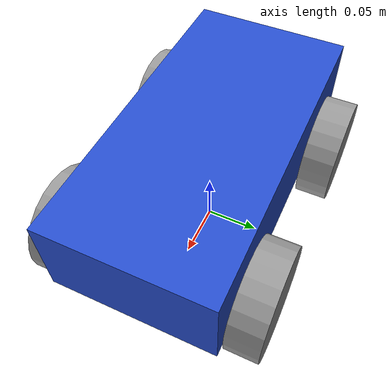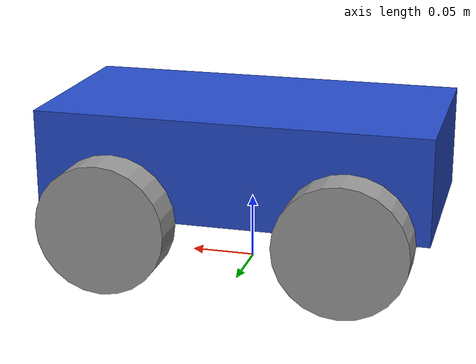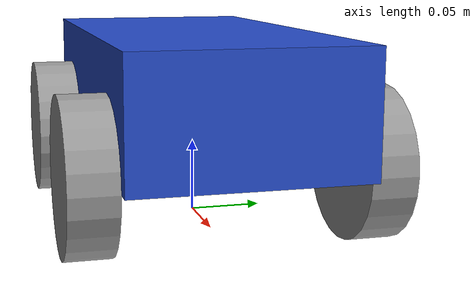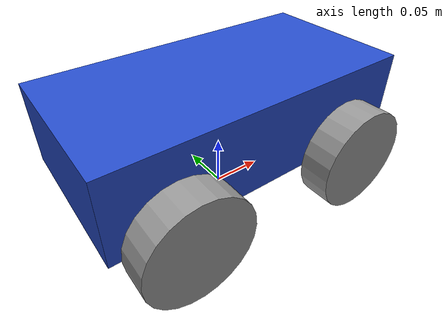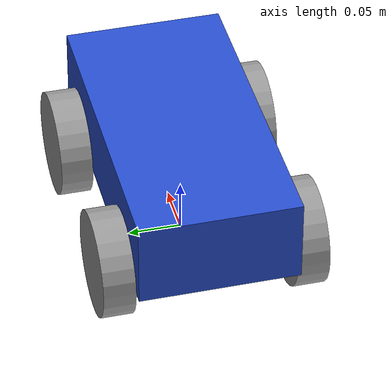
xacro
<?xml version="1.0"?>
<robot xmlns:xacro="http://www.ros.org/wiki/xacro">

    <xacro:property name="base_length" value="0.30" />
    <xacro:property name="base_width" value="0.15" />
    <xacro:property name="base_height" value="0.08" />
    <xacro:property name="wheel_radius" value="0.05" />
    <xacro:property name="wheel_length" value="0.03" />

    <link name="base_footprint" />
    <joint name="base_joint" type="fixed">
        <parent link="base_footprint" />
        <child link="base_link" />
        <origin xyz="0 0 ${wheel_radius}" rpy="0 0 0"/>
    </joint>

    <link name="base_link">
        <visual>
            <geometry>
                <box size="${base_length} ${base_width} ${base_height}" />
            </geometry>
            <origin xyz="0 0 ${base_height / 2.0}" rpy="0 0 0" />
            <material name="blue" />
        </visual>
        <collision>
            <geometry>
                <box size="${base_length} ${base_width} ${base_height}" />
            </geometry>
            <origin xyz="0 0 ${base_height / 2.0}" rpy="0 0 0" />
        </collision>
        <xacro:box_inertia m="5.0" l="${2*base_length}" w="${2*base_width}" h="${2*base_height}"
                           xyz="0 0 ${base_height / 2.0}" rpy="0 0 0" />
    </link>

    <xacro:macro name="wheel_link" params="prefix">
        <link name="${prefix}_wheel_link">
            <visual>
                <geometry>
                    <cylinder radius="${wheel_radius}" length="${wheel_length}" />
                </geometry>
                <origin xyz="0 0 0" rpy="${pi / 2.0} 0 0" />
                <material name="grey" />
            </visual>
            <collision>
                <geometry>
                    <cylinder radius="${wheel_radius}" length="${wheel_length}" />
                </geometry>
                <origin xyz="0 0 0" rpy="${pi / 2.0} 0 0" />
            </collision>
            <xacro:cylinder_inertia m="1.0" r="${2*wheel_radius}" h="${2*wheel_length}"
                                    xyz="0 0 0" rpy="${pi / 2.0} 0 0" />
        </link>
    </xacro:macro>

    <xacro:wheel_link prefix="right" />
    <xacro:wheel_link prefix="left" />
    <xacro:wheel_link prefix="rightb" />
    <xacro:wheel_link prefix="leftb" />

    <joint name="base_right_wheel_joint" type="continuous">
        <parent link="base_link" />
        <child link="right_wheel_link" />
        <origin xyz="0.09 -0.09 0" rpy="0 0 0" />
        <axis xyz="0 1 0" />
    </joint>

    <joint name="base_left_wheel_joint" type="continuous">
        <parent link="base_link" />
        <child link="left_wheel_link" />
        <origin xyz="0.09 0.09 0" rpy="0 0 0" />
        <axis xyz="0 1 0" />
    </joint>
    <joint name="base_rightb_wheel_joint" type="continuous">
        <parent link="base_link" />
        <child link="rightb_wheel_link" />
        <origin xyz="-0.09 -0.09 0" rpy="0 0 0" />
        <axis xyz="0 1 0" />
    </joint>

    <joint name="base_leftb_wheel_joint" type="continuous">
        <parent link="base_link" />
        <child link="leftb_wheel_link" />
        <origin xyz="-0.09 0.09 0" rpy="0 0 0" />
        <axis xyz="0 1 0" />
    </joint>

</robot>
